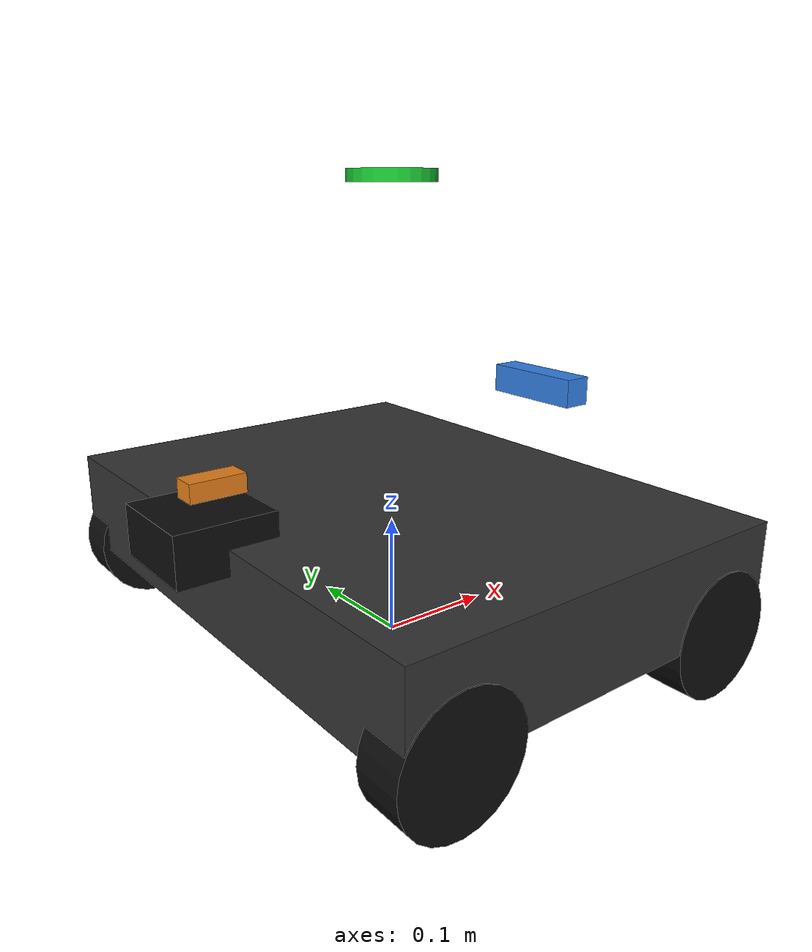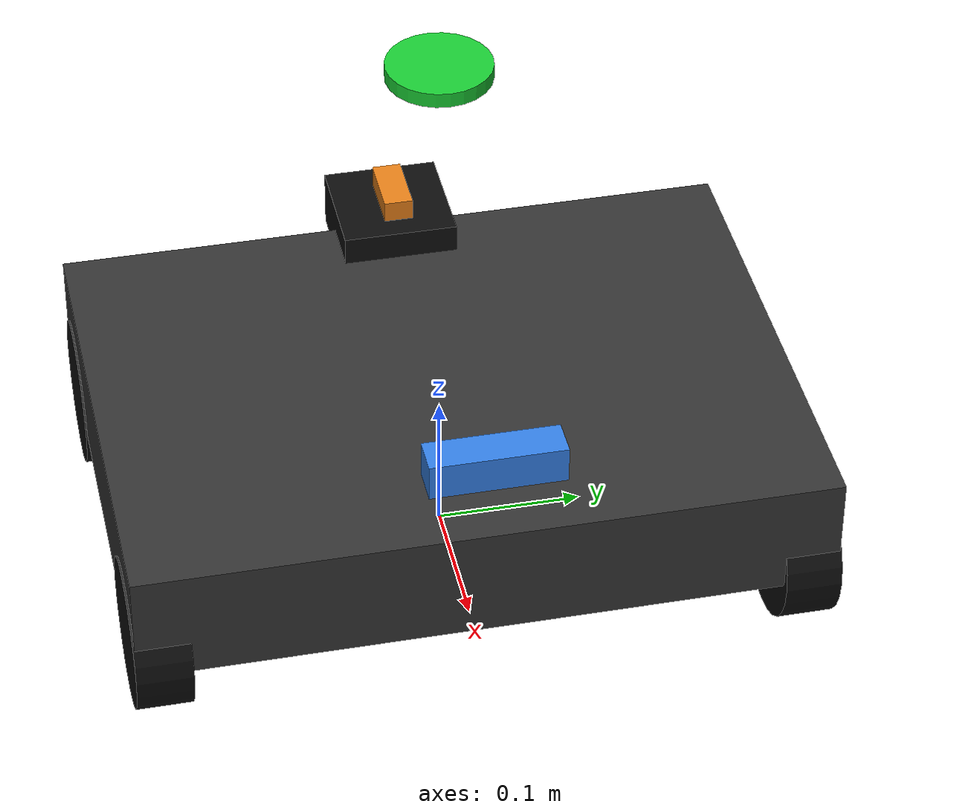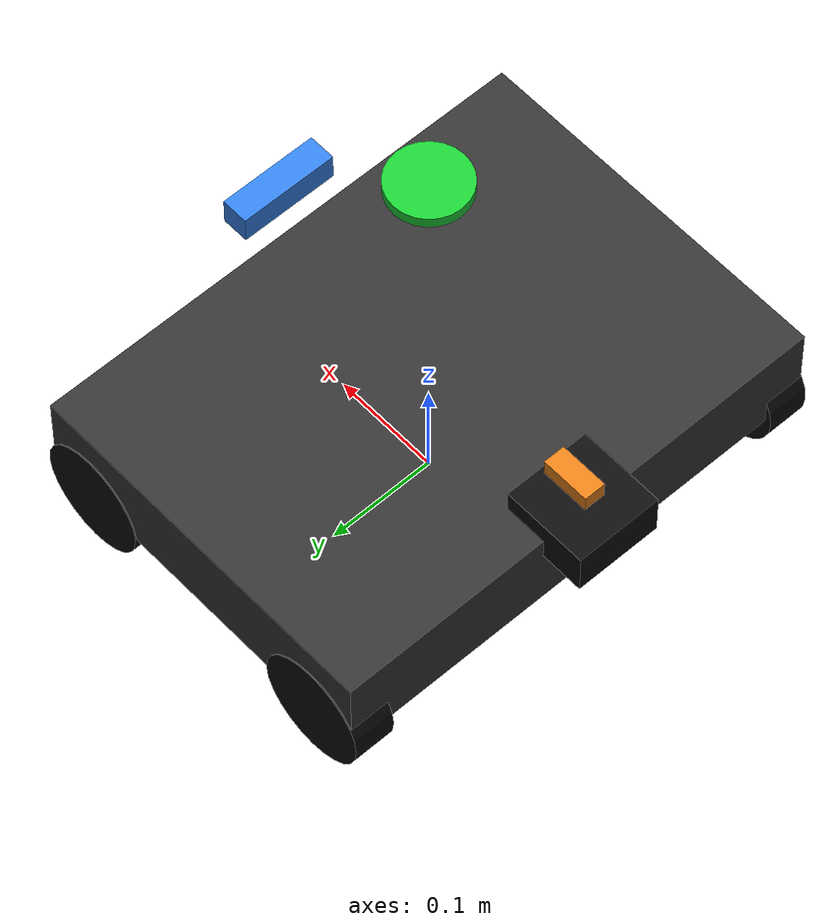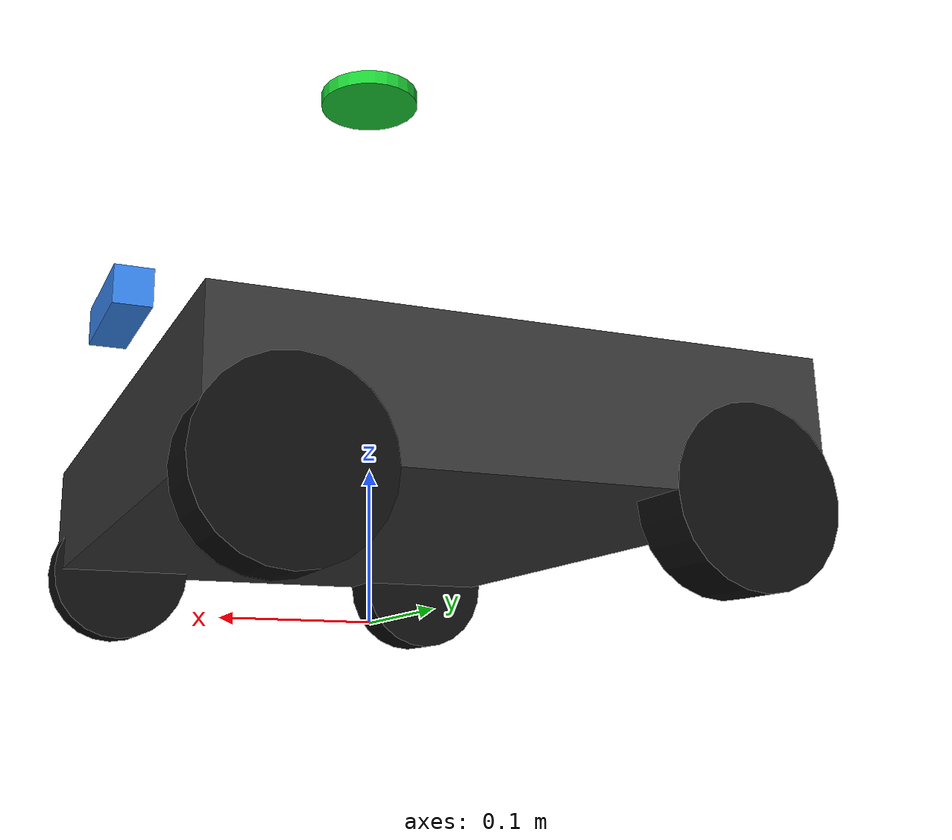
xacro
<?xml version="1.0"?>
<robot name="jetson_bot" xmlns:xacro="http://www.ros.org/wiki/xacro">

  <!-- Colours -->
  <material name="dark_grey">
    <color rgba="0.2 0.2 0.2 1"/>
  </material>
  <material name="orange">
    <color rgba="0.9 0.5 0.1 1"/>
  </material>
  <material name="blue">
    <color rgba="0.2 0.5 0.9 1"/>
  </material>
  <material name="black">
    <color rgba="0.05 0.05 0.05 1"/>
  </material>
  <material name="green">
    <color rgba="0.1 0.8 0.2 1"/>
  </material>

  <!-- Properties -->
  <xacro:property name="base_length"    value="0.343"/>
  <xacro:property name="base_width"     value="0.470"/>
  <xacro:property name="base_height"    value="0.080"/>
  <xacro:property name="wheel_radius"   value="0.0508"/>
  <xacro:property name="wheel_width"    value="0.038"/>
  <xacro:property name="half_lx"        value="0.127"/>   <!-- half wheelbase (Lx) -->
  <xacro:property name="half_ly"        value="0.217"/>   <!-- half track (Ly) -->
  <xacro:property name="lidar_height"   value="0.010"/>   <!-- spinning cylinder ~3/8 in -->

  <!-- Ground-to-base_link offset: base_link is at centre of chassis plate,
       chassis bottom sits at wheel-axle height (wheel_radius above ground) -->
  <xacro:property name="base_z"  value="${wheel_radius + base_height/2}"/>
  <!--  = 0.0508 + 0.040 = 0.0908 m above ground  -->

  <!-- Wheel macro -->
  <xacro:macro name="wheel" params="name x y">
    <link name="${name}_link">
      <visual>
        <geometry><cylinder length="${wheel_width}" radius="${wheel_radius}"/></geometry>
        <material name="black"/>
      </visual>
      <collision>
        <geometry><cylinder length="${wheel_width}" radius="${wheel_radius}"/></geometry>
      </collision>
      <inertial>
        <mass value="0.3"/>
        <inertia ixx="0.0003" ixy="0" ixz="0"
                              iyy="0.0003" iyz="0"
                                          izz="0.0005"/>
      </inertial>
    </link>

    <joint name="${name}_joint" type="continuous">
      <parent link="base_link"/>
      <child  link="${name}_link"/>
      <!-- Wheel axle is at the bottom of the chassis: z = -(base_height/2) -->
      <origin xyz="${x} ${y} ${-base_height/2}"
              rpy="${pi/2} 0 0"/>
      <axis xyz="0 0 1"/>
    </joint>
  </xacro:macro>

  <!-- base_footprint - ground contact frame used by Nav2                    -->
  <link name="base_footprint"/>

  <joint name="base_footprint_joint" type="fixed">
    <parent link="base_footprint"/>
    <child  link="base_link"/>
    <!-- base_link centre = wheel_radius + base_height/2 above ground -->
    <origin xyz="0 0 ${base_z}"/>
  </joint>

  <!-- base_link - robot body                                                 -->
  <link name="base_link">
    <visual>
      <geometry>
        <box size="${base_length} ${base_width} ${base_height}"/>
      </geometry>
      <material name="dark_grey"/>
    </visual>
    <collision>
      <geometry>
        <box size="${base_length} ${base_width} ${base_height}"/>
      </geometry>
    </collision>
    <inertial>
      <mass value="3.0"/>
      <!-- Solid box inertia approximation -->
      <inertia
        ixx="${(3.0/12.0)*(base_width*base_width + base_height*base_height)}"
        ixy="0" ixz="0"
        iyy="${(3.0/12.0)*(base_length*base_length + base_height*base_height)}"
        iyz="0"
        izz="${(3.0/12.0)*(base_length*base_length + base_width*base_width)}"/>
    </inertial>
  </link>

  <!-- Wheels: FL, FR, BL, BR                                                -->
  <xacro:wheel name="wheel_FL" x=" ${half_lx}" y=" ${half_ly}"/>
  <xacro:wheel name="wheel_FR" x=" ${half_lx}" y="${-half_ly}"/>
  <xacro:wheel name="wheel_BL" x="${-half_lx}" y=" ${half_ly}"/>
  <xacro:wheel name="wheel_BR" x="${-half_lx}" y="${-half_ly}"/>

  <!-- Camera link (USB camera, front-centre, sensor at 7⅝" = 0.1937 m)    -->
  <link name="camera_link">
    <visual>
      <geometry><box size="0.025 0.090 0.025"/></geometry>
      <material name="blue"/>
    </visual>
  </link>

  <joint name="camera_joint" type="fixed">
    <parent link="base_link"/>
    <child  link="camera_link"/>
    <!-- Front-centre: x = base_length/2, y = 0
         Height: 7.625" = 0.1937 m above ground → z relative to base_link -->
    <origin xyz="${base_length/2} 0 ${0.1937 - base_z}"
            rpy="0 0 0"/>
  </joint>

  <!-- Optical frame: Z forward, X right, Y down (standard for OpenCV / ROS) -->
  <link name="camera_optical_link"/>
  <joint name="camera_optical_joint" type="fixed">
    <parent link="camera_link"/>
    <child  link="camera_optical_link"/>
    <origin xyz="0 0 0" rpy="${-pi/2} 0 ${-pi/2}"/>
  </joint>

  <!-- LiDAR — LDROBOT STL-27L, DEAD CENTRE of robot                        -->
  <!-- Spinning bit: 14⅝" (0.3716 m) to 15" (0.381 m) above ground         -->
  <link name="lidar_link">
    <visual>
      <geometry><cylinder length="${lidar_height}" radius="0.035"/></geometry>
      <material name="green"/>
    </visual>
  </link>

  <joint name="lidar_joint" type="fixed">
    <parent link="base_link"/>
    <child  link="lidar_link"/>
    <!-- Dead centre: x=0, y=0
         LiDAR mid-height = (14.625+15)/2 = 14.8125" = 0.3763 m above ground -->
    <origin xyz="0 0 ${0.3763 - base_z}"
            rpy="0 0 0"/>
  </joint>

  <!-- laser_frame: the actual scan plane (top of spinning bit, required by ldlidar_stl_ros2) -->
  <link name="laser_frame"/>
  <joint name="laser_frame_joint" type="fixed">
    <parent link="lidar_link"/>
    <child  link="laser_frame"/>
    <origin xyz="0 0 ${lidar_height/2}" rpy="0 0 0"/>
  </joint>

  <!-- Ultrasonic sensor (HC-SR04, REAR-centre, facing backward)             -->
  <!-- Height: 6½" = 0.1651 m above ground                                   -->
  <link name="ultrasonic_link">
    <visual>
      <geometry><box size="0.045 0.020 0.015"/></geometry>
      <material name="orange"/>
    </visual>
  </link>

  <joint name="ultrasonic_joint" type="fixed">
    <parent link="base_link"/>
    <child  link="ultrasonic_link"/>
    <!-- Rear-centre facing backward: x = -(base_length/2 - 0.01), y = 0
         Height: 6.5" = 0.1651 m above ground → z relative to base_link -->
    <origin xyz="${-(base_length/2 - 0.01)} 0 ${0.1651 - base_z}"
            rpy="0 0 ${pi}"/>
  </joint>

  <!-- SO-ARM101 Arm Mount Base (Rear edge of chassis, facing rear)          -->
  <link name="arm_base_link">
    <visual>
      <geometry><box size="0.080 0.080 0.040"/></geometry>
      <material name="black"/>
    </visual>
  </link>

  <joint name="arm_base_joint" type="fixed">
    <parent link="base_link"/>
    <child  link="arm_base_link"/>
    <origin xyz="${-base_length/2} 0 0.040" rpy="0 0 ${pi}"/>
  </joint>

</robot>
